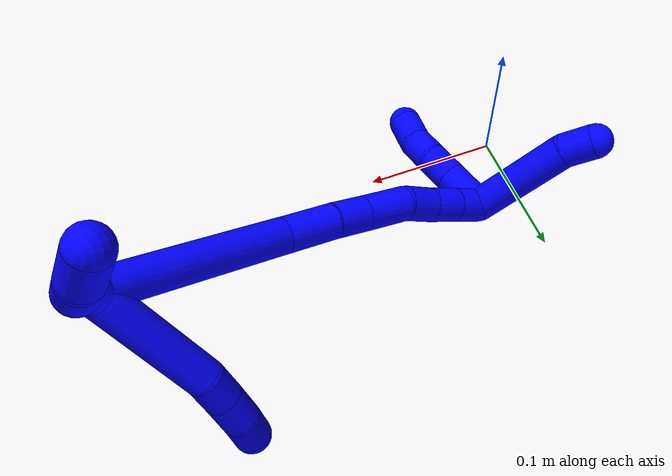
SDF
<sdf version="1.7">
 <world name="default">
  <model name="1">
   <static>0</static>
   <link name="1">
    <collision name="collision-cylinder-e_1_2_8">
     <pose>-0.017245 0.033324 -0.020356 -2.11915 -0.41586 0.719472</pose>
     <geometry><cylinder><radius>0.0125</radius><length>0.085376</length></cylinder></geometry>
     <surface>
      <friction><ode><mu>1.16</mu><mu2>1.16</mu2><slip1>0</slip1><slip2>0</slip2></ode></friction>
      <contact><ode><kp>1e+06</kp><kd>1</kd><max_vel>0</max_vel><min_depth>0.001</min_depth></ode></contact>
     </surface>
    </collision>
    <visual name="visual-cylinder-e_1_2_8">
     <pose>-0.017245 0.033324 -0.020356 -2.11915 -0.41586 0.719472</pose>
     <geometry><cylinder><radius>0.0125</radius><length>0.085376</length></cylinder></geometry>
     <material><ambient>0 0 1 1</ambient></material>
    </visual>
    <collision name="collision-cylinder-e_2_8_9">
     <pose>-0.035873 0.075308 -0.045839 -2.10537 -0.136602 0.23886</pose>
     <geometry><cylinder><radius>0.0125</radius><length>0.020316</length></cylinder></geometry>
     <surface>
      <friction><ode><mu>1.16</mu><mu2>1.16</mu2><slip1>0</slip1><slip2>0</slip2></ode></friction>
      <contact><ode><kp>1e+06</kp><kd>1</kd><max_vel>0</max_vel><min_depth>0.001</min_depth></ode></contact>
     </surface>
    </collision>
    <visual name="visual-cylinder-e_2_8_9">
     <pose>-0.035873 0.075308 -0.045839 -2.10537 -0.136602 0.23886</pose>
     <geometry><cylinder><radius>0.0125</radius><length>0.020316</length></cylinder></geometry>
     <material><ambient>0 0 1 1</ambient></material>
    </visual>
    <collision name="collision-cylinder-e_3_9_10">
     <pose>-0.038606 0.093469 -0.056375 -2.08832 -0.122862 0.2108</pose>
     <geometry><cylinder><radius>0.0125</radius><length>0.022033</length></cylinder></geometry>
     <surface>
      <friction><ode><mu>1.16</mu><mu2>1.16</mu2><slip1>0</slip1><slip2>0</slip2></ode></friction>
      <contact><ode><kp>1e+06</kp><kd>1</kd><max_vel>0</max_vel><min_depth>0.001</min_depth></ode></contact>
     </surface>
    </collision>
    <visual name="visual-cylinder-e_3_9_10">
     <pose>-0.038606 0.093469 -0.056375 -2.08832 -0.122862 0.2108</pose>
     <geometry><cylinder><radius>0.0125</radius><length>0.022033</length></cylinder></geometry>
     <material><ambient>0 0 1 1</ambient></material>
    </visual>
    <collision name="collision-cylinder-e_4_10_6">
     <pose>-0.038757 0.111981 -0.06822 -2.19106 0.10789 -0.209091</pose>
     <geometry><cylinder><radius>0.0125</radius><length>0.022275</length></cylinder></geometry>
     <surface>
      <friction><ode><mu>1.16</mu><mu2>1.16</mu2><slip1>0</slip1><slip2>0</slip2></ode></friction>
      <contact><ode><kp>1e+06</kp><kd>1</kd><max_vel>0</max_vel><min_depth>0.001</min_depth></ode></contact>
     </surface>
    </collision>
    <visual name="visual-cylinder-e_4_10_6">
     <pose>-0.038757 0.111981 -0.06822 -2.19106 0.10789 -0.209091</pose>
     <geometry><cylinder><radius>0.0125</radius><length>0.022275</length></cylinder></geometry>
     <material><ambient>0 0 1 1</ambient></material>
    </visual>
    <collision name="collision-cylinder-e_1_2_11">
     <pose>-0.014983 -0.007313 0.019715 0.355203 -0.619077 -0.114684</pose>
     <geometry><cylinder><radius>0.0125</radius><length>0.05164</length></cylinder></geometry>
     <surface>
      <friction><ode><mu>1.16</mu><mu2>1.16</mu2><slip1>0</slip1><slip2>0</slip2></ode></friction>
      <contact><ode><kp>1e+06</kp><kd>1</kd><max_vel>0</max_vel><min_depth>0.001</min_depth></ode></contact>
     </surface>
    </collision>
    <visual name="visual-cylinder-e_1_2_11">
     <pose>-0.014983 -0.007313 0.019715 0.355203 -0.619077 -0.114684</pose>
     <geometry><cylinder><radius>0.0125</radius><length>0.05164</length></cylinder></geometry>
     <material><ambient>0 0 1 1</ambient></material>
    </visual>
    <collision name="collision-cylinder-e_2_11_12">
     <pose>-0.037272 -0.019494 0.044844 0.7323 -0.787196 -0.31581</pose>
     <geometry><cylinder><radius>0.0125</radius><length>0.020628</length></cylinder></geometry>
     <surface>
      <friction><ode><mu>1.16</mu><mu2>1.16</mu2><slip1>0</slip1><slip2>0</slip2></ode></friction>
      <contact><ode><kp>1e+06</kp><kd>1</kd><max_vel>0</max_vel><min_depth>0.001</min_depth></ode></contact>
     </surface>
    </collision>
    <visual name="visual-cylinder-e_2_11_12">
     <pose>-0.037272 -0.019494 0.044844 0.7323 -0.787196 -0.31581</pose>
     <geometry><cylinder><radius>0.0125</radius><length>0.020628</length></cylinder></geometry>
     <material><ambient>0 0 1 1</ambient></material>
    </visual>
    <collision name="collision-cylinder-e_3_12_5">
     <pose>-0.053696 -0.03376 0.054817 1.11917 -0.717626 -0.461471</pose>
     <geometry><cylinder><radius>0.0125</radius><length>0.027732</length></cylinder></geometry>
     <surface>
      <friction><ode><mu>1.16</mu><mu2>1.16</mu2><slip1>0</slip1><slip2>0</slip2></ode></friction>
      <contact><ode><kp>1e+06</kp><kd>1</kd><max_vel>0</max_vel><min_depth>0.001</min_depth></ode></contact>
     </surface>
    </collision>
    <visual name="visual-cylinder-e_3_12_5">
     <pose>-0.053696 -0.03376 0.054817 1.11917 -0.717626 -0.461471</pose>
     <geometry><cylinder><radius>0.0125</radius><length>0.027732</length></cylinder></geometry>
     <material><ambient>0 0 1 1</ambient></material>
    </visual>
    <collision name="collision-cylinder-e_1_2_13">
     <pose>-0.025769 0.000775 -0.060831 -3.12886 -0.400662 3.07888</pose>
     <geometry><cylinder><radius>0.0125</radius><length>0.132138</length></cylinder></geometry>
     <surface>
      <friction><ode><mu>1.16</mu><mu2>1.16</mu2><slip1>0</slip1><slip2>0</slip2></ode></friction>
      <contact><ode><kp>1e+06</kp><kd>1</kd><max_vel>0</max_vel><min_depth>0.001</min_depth></ode></contact>
     </surface>
    </collision>
    <visual name="visual-cylinder-e_1_2_13">
     <pose>-0.025769 0.000775 -0.060831 -3.12886 -0.400662 3.07888</pose>
     <geometry><cylinder><radius>0.0125</radius><length>0.132138</length></cylinder></geometry>
     <material><ambient>0 0 1 1</ambient></material>
    </visual>
    <collision name="collision-cylinder-e_2_13_14">
     <pose>-0.061818 0.000838 -0.137911 3.09779 -0.563694 -2.99059</pose>
     <geometry><cylinder><radius>0.0125</radius><length>0.038481</length></cylinder></geometry>
     <surface>
      <friction><ode><mu>1.16</mu><mu2>1.16</mu2><slip1>0</slip1><slip2>0</slip2></ode></friction>
      <contact><ode><kp>1e+06</kp><kd>1</kd><max_vel>0</max_vel><min_depth>0.001</min_depth></ode></contact>
     </surface>
    </collision>
    <visual name="visual-cylinder-e_2_13_14">
     <pose>-0.061818 0.000838 -0.137911 3.09779 -0.563694 -2.99059</pose>
     <geometry><cylinder><radius>0.0125</radius><length>0.038481</length></cylinder></geometry>
     <material><ambient>0 0 1 1</ambient></material>
    </visual>
    <collision name="collision-cylinder-e_3_14_15">
     <pose>-0.078502 0.000376 -0.165269 -3.11904 -0.522801 3.05735</pose>
     <geometry><cylinder><radius>0.0125</radius><length>0.025652</length></cylinder></geometry>
     <surface>
      <friction><ode><mu>1.16</mu><mu2>1.16</mu2><slip1>0</slip1><slip2>0</slip2></ode></friction>
      <contact><ode><kp>1e+06</kp><kd>1</kd><max_vel>0</max_vel><min_depth>0.001</min_depth></ode></contact>
     </surface>
    </collision>
    <visual name="visual-cylinder-e_3_14_15">
     <pose>-0.078502 0.000376 -0.165269 -3.11904 -0.522801 3.05735</pose>
     <geometry><cylinder><radius>0.0125</radius><length>0.025652</length></cylinder></geometry>
     <material><ambient>0 0 1 1</ambient></material>
    </visual>
    <collision name="collision-cylinder-e_4_15_16">
     <pose>-0.09473 0.000362 -0.190338 3.12262 -0.613145 -3.08168</pose>
     <geometry><cylinder><radius>0.0125</radius><length>0.034141</length></cylinder></geometry>
     <surface>
      <friction><ode><mu>1.16</mu><mu2>1.16</mu2><slip1>0</slip1><slip2>0</slip2></ode></friction>
      <contact><ode><kp>1e+06</kp><kd>1</kd><max_vel>0</max_vel><min_depth>0.001</min_depth></ode></contact>
     </surface>
    </collision>
    <visual name="visual-cylinder-e_4_15_16">
     <pose>-0.09473 0.000362 -0.190338 3.12262 -0.613145 -3.08168</pose>
     <geometry><cylinder><radius>0.0125</radius><length>0.034141</length></cylinder></geometry>
     <material><ambient>0 0 1 1</ambient></material>
    </visual>
    <collision name="collision-cylinder-e_5_16_17">
     <pose>-0.110126 0.003205 -0.214651 -2.84995 -0.475982 2.05284</pose>
     <geometry><cylinder><radius>0.0125</radius><length>0.024326</length></cylinder></geometry>
     <surface>
      <friction><ode><mu>1.16</mu><mu2>1.16</mu2><slip1>0</slip1><slip2>0</slip2></ode></friction>
      <contact><ode><kp>1e+06</kp><kd>1</kd><max_vel>0</max_vel><min_depth>0.001</min_depth></ode></contact>
     </surface>
    </collision>
    <visual name="visual-cylinder-e_5_16_17">
     <pose>-0.110126 0.003205 -0.214651 -2.84995 -0.475982 2.05284</pose>
     <geometry><cylinder><radius>0.0125</radius><length>0.024326</length></cylinder></geometry>
     <material><ambient>0 0 1 1</ambient></material>
    </visual>
    <collision name="collision-cylinder-e_6_17_18">
     <pose>-0.121935 0.008476 -0.233899 -2.90307 -0.598089 2.40015</pose>
     <geometry><cylinder><radius>0.0125</radius><length>0.022151</length></cylinder></geometry>
     <surface>
      <friction><ode><mu>1.16</mu><mu2>1.16</mu2><slip1>0</slip1><slip2>0</slip2></ode></friction>
      <contact><ode><kp>1e+06</kp><kd>1</kd><max_vel>0</max_vel><min_depth>0.001</min_depth></ode></contact>
     </surface>
    </collision>
    <visual name="visual-cylinder-e_6_17_18">
     <pose>-0.121935 0.008476 -0.233899 -2.90307 -0.598089 2.40015</pose>
     <geometry><cylinder><radius>0.0125</radius><length>0.022151</length></cylinder></geometry>
     <material><ambient>0 0 1 1</ambient></material>
    </visual>
    <collision name="collision-cylinder-e_7_18_1">
     <pose>-0.1346 0.01297 -0.252108 -2.8964 -0.589943 2.37107</pose>
     <geometry><cylinder><radius>0.0125</radius><length>0.023111</length></cylinder></geometry>
     <surface>
      <friction><ode><mu>1.16</mu><mu2>1.16</mu2><slip1>0</slip1><slip2>0</slip2></ode></friction>
      <contact><ode><kp>1e+06</kp><kd>1</kd><max_vel>0</max_vel><min_depth>0.001</min_depth></ode></contact>
     </surface>
    </collision>
    <visual name="visual-cylinder-e_7_18_1">
     <pose>-0.1346 0.01297 -0.252108 -2.8964 -0.589943 2.37107</pose>
     <geometry><cylinder><radius>0.0125</radius><length>0.023111</length></cylinder></geometry>
     <material><ambient>0 0 1 1</ambient></material>
    </visual>
    <collision name="collision-cylinder-e_1_1_19">
     <pose>-0.173837 -0.004318 -0.260958 1.5471 -1.03174 -1.01152</pose>
     <geometry><cylinder><radius>0.0125</radius><length>0.076459</length></cylinder></geometry>
     <surface>
      <friction><ode><mu>1.16</mu><mu2>1.16</mu2><slip1>0</slip1><slip2>0</slip2></ode></friction>
      <contact><ode><kp>1e+06</kp><kd>1</kd><max_vel>0</max_vel><min_depth>0.001</min_depth></ode></contact>
     </surface>
    </collision>
    <visual name="visual-cylinder-e_1_1_19">
     <pose>-0.173837 -0.004318 -0.260958 1.5471 -1.03174 -1.01152</pose>
     <geometry><cylinder><radius>0.0125</radius><length>0.076459</length></cylinder></geometry>
     <material><ambient>0 0 1 1</ambient></material>
    </visual>
    <collision name="collision-cylinder-e_2_19_4">
     <pose>-0.217991 -0.027015 -0.259897 1.37954 -1.30114 -1.12133</pose>
     <geometry><cylinder><radius>0.0125</radius><length>0.023541</length></cylinder></geometry>
     <surface>
      <friction><ode><mu>1.16</mu><mu2>1.16</mu2><slip1>0</slip1><slip2>0</slip2></ode></friction>
      <contact><ode><kp>1e+06</kp><kd>1</kd><max_vel>0</max_vel><min_depth>0.001</min_depth></ode></contact>
     </surface>
    </collision>
    <visual name="visual-cylinder-e_2_19_4">
     <pose>-0.217991 -0.027015 -0.259897 1.37954 -1.30114 -1.12133</pose>
     <geometry><cylinder><radius>0.0125</radius><length>0.023541</length></cylinder></geometry>
     <material><ambient>0 0 1 1</ambient></material>
    </visual>
    <collision name="collision-cylinder-e_1_1_20">
     <pose>-0.128881 0.005573 -0.267222 2.10837 0.820419 1.30675</pose>
     <geometry><cylinder><radius>0.0125</radius><length>0.033216</length></cylinder></geometry>
     <surface>
      <friction><ode><mu>1.16</mu><mu2>1.16</mu2><slip1>0</slip1><slip2>0</slip2></ode></friction>
      <contact><ode><kp>1e+06</kp><kd>1</kd><max_vel>0</max_vel><min_depth>0.001</min_depth></ode></contact>
     </surface>
    </collision>
    <visual name="visual-cylinder-e_1_1_20">
     <pose>-0.128881 0.005573 -0.267222 2.10837 0.820419 1.30675</pose>
     <geometry><cylinder><radius>0.0125</radius><length>0.033216</length></cylinder></geometry>
     <material><ambient>0 0 1 1</ambient></material>
    </visual>
    <collision name="collision-cylinder-e_2_20_21">
     <pose>-0.108095 -0.011581 -0.276168 1.97156 0.819726 1.16107</pose>
     <geometry><cylinder><radius>0.0125</radius><length>0.023638</length></cylinder></geometry>
     <surface>
      <friction><ode><mu>1.16</mu><mu2>1.16</mu2><slip1>0</slip1><slip2>0</slip2></ode></friction>
      <contact><ode><kp>1e+06</kp><kd>1</kd><max_vel>0</max_vel><min_depth>0.001</min_depth></ode></contact>
     </surface>
    </collision>
    <visual name="visual-cylinder-e_2_20_21">
     <pose>-0.108095 -0.011581 -0.276168 1.97156 0.819726 1.16107</pose>
     <geometry><cylinder><radius>0.0125</radius><length>0.023638</length></cylinder></geometry>
     <material><ambient>0 0 1 1</ambient></material>
    </visual>
    <collision name="collision-cylinder-e_3_21_22">
     <pose>-0.092044 -0.024631 -0.283413 2.20071 0.816893 1.41023</pose>
     <geometry><cylinder><radius>0.0125</radius><length>0.020333</length></cylinder></geometry>
     <surface>
      <friction><ode><mu>1.16</mu><mu2>1.16</mu2><slip1>0</slip1><slip2>0</slip2></ode></friction>
      <contact><ode><kp>1e+06</kp><kd>1</kd><max_vel>0</max_vel><min_depth>0.001</min_depth></ode></contact>
     </surface>
    </collision>
    <visual name="visual-cylinder-e_3_21_22">
     <pose>-0.092044 -0.024631 -0.283413 2.20071 0.816893 1.41023</pose>
     <geometry><cylinder><radius>0.0125</radius><length>0.020333</length></cylinder></geometry>
     <material><ambient>0 0 1 1</ambient></material>
    </visual>
    <collision name="collision-cylinder-e_4_22_3">
     <pose>-0.078396 -0.037454 -0.293789 2.28778 0.578415 1.15854</pose>
     <geometry><cylinder><radius>0.0125</radius><length>0.022814</length></cylinder></geometry>
     <surface>
      <friction><ode><mu>1.16</mu><mu2>1.16</mu2><slip1>0</slip1><slip2>0</slip2></ode></friction>
      <contact><ode><kp>1e+06</kp><kd>1</kd><max_vel>0</max_vel><min_depth>0.001</min_depth></ode></contact>
     </surface>
    </collision>
    <visual name="visual-cylinder-e_4_22_3">
     <pose>-0.078396 -0.037454 -0.293789 2.28778 0.578415 1.15854</pose>
     <geometry><cylinder><radius>0.0125</radius><length>0.022814</length></cylinder></geometry>
     <material><ambient>0 0 1 1</ambient></material>
    </visual>
    <collision name="collision-sphere-3">
     <pose>-0.07216 -0.044654 -0.300065 0 -0 0</pose>
     <geometry><sphere><radius>0.0125</radius></sphere></geometry>
     <surface>
      <friction><ode><mu>1.16</mu><mu2>1.16</mu2><slip1>0</slip1><slip2>0</slip2></ode></friction>
      <contact><ode><kp>1e+06</kp><kd>1</kd><max_vel>0</max_vel><min_depth>0.001</min_depth></ode></contact>
     </surface>
    </collision>
    <visual name="visual-sphere-3">
     <pose>-0.07216 -0.044654 -0.300065 0 -0 0</pose>
     <geometry><sphere><radius>0.0125</radius></sphere></geometry>
     <material><ambient>0 0 1 1</ambient></material>
    </visual>
    <collision name="collision-sphere-22">
     <pose>-0.084633 -0.030254 -0.287513 0 -0 0</pose>
     <geometry><sphere><radius>0.0125</radius></sphere></geometry>
     <surface>
      <friction><ode><mu>1.16</mu><mu2>1.16</mu2><slip1>0</slip1><slip2>0</slip2></ode></friction>
      <contact><ode><kp>1e+06</kp><kd>1</kd><max_vel>0</max_vel><min_depth>0.001</min_depth></ode></contact>
     </surface>
    </collision>
    <visual name="visual-sphere-22">
     <pose>-0.084633 -0.030254 -0.287513 0 -0 0</pose>
     <geometry><sphere><radius>0.0125</radius></sphere></geometry>
     <material><ambient>0 0 1 1</ambient></material>
    </visual>
    <collision name="collision-sphere-21">
     <pose>-0.099456 -0.019008 -0.279314 0 -0 0</pose>
     <geometry><sphere><radius>0.0125</radius></sphere></geometry>
     <surface>
      <friction><ode><mu>1.16</mu><mu2>1.16</mu2><slip1>0</slip1><slip2>0</slip2></ode></friction>
      <contact><ode><kp>1e+06</kp><kd>1</kd><max_vel>0</max_vel><min_depth>0.001</min_depth></ode></contact>
     </surface>
    </collision>
    <visual name="visual-sphere-21">
     <pose>-0.099456 -0.019008 -0.279314 0 -0 0</pose>
     <geometry><sphere><radius>0.0125</radius></sphere></geometry>
     <material><ambient>0 0 1 1</ambient></material>
    </visual>
    <collision name="collision-sphere-20">
     <pose>-0.116734 -0.004155 -0.273021 0 -0 0</pose>
     <geometry><sphere><radius>0.0125</radius></sphere></geometry>
     <surface>
      <friction><ode><mu>1.16</mu><mu2>1.16</mu2><slip1>0</slip1><slip2>0</slip2></ode></friction>
      <contact><ode><kp>1e+06</kp><kd>1</kd><max_vel>0</max_vel><min_depth>0.001</min_depth></ode></contact>
     </surface>
    </collision>
    <visual name="visual-sphere-20">
     <pose>-0.116734 -0.004155 -0.273021 0 -0 0</pose>
     <geometry><sphere><radius>0.0125</radius></sphere></geometry>
     <material><ambient>0 0 1 1</ambient></material>
    </visual>
    <collision name="collision-sphere-4">
     <pose>-0.229336 -0.030094 -0.259301 0 -0 0</pose>
     <geometry><sphere><radius>0.0125</radius></sphere></geometry>
     <surface>
      <friction><ode><mu>1.16</mu><mu2>1.16</mu2><slip1>0</slip1><slip2>0</slip2></ode></friction>
      <contact><ode><kp>1e+06</kp><kd>1</kd><max_vel>0</max_vel><min_depth>0.001</min_depth></ode></contact>
     </surface>
    </collision>
    <visual name="visual-sphere-4">
     <pose>-0.229336 -0.030094 -0.259301 0 -0 0</pose>
     <geometry><sphere><radius>0.0125</radius></sphere></geometry>
     <material><ambient>0 0 1 1</ambient></material>
    </visual>
    <collision name="collision-sphere-11">
     <pose>-0.029966 -0.014626 0.039431 0 -0 0</pose>
     <geometry><sphere><radius>0.0125</radius></sphere></geometry>
     <surface>
      <friction><ode><mu>1.16</mu><mu2>1.16</mu2><slip1>0</slip1><slip2>0</slip2></ode></friction>
      <contact><ode><kp>1e+06</kp><kd>1</kd><max_vel>0</max_vel><min_depth>0.001</min_depth></ode></contact>
     </surface>
    </collision>
    <visual name="visual-sphere-11">
     <pose>-0.029966 -0.014626 0.039431 0 -0 0</pose>
     <geometry><sphere><radius>0.0125</radius></sphere></geometry>
     <material><ambient>0 0 1 1</ambient></material>
    </visual>
    <collision name="collision-sphere-6">
     <pose>-0.037558 0.120991 -0.074656 0 -0 0</pose>
     <geometry><sphere><radius>0.0125</radius></sphere></geometry>
     <surface>
      <friction><ode><mu>1.16</mu><mu2>1.16</mu2><slip1>0</slip1><slip2>0</slip2></ode></friction>
      <contact><ode><kp>1e+06</kp><kd>1</kd><max_vel>0</max_vel><min_depth>0.001</min_depth></ode></contact>
     </surface>
    </collision>
    <visual name="visual-sphere-6">
     <pose>-0.037558 0.120991 -0.074656 0 -0 0</pose>
     <geometry><sphere><radius>0.0125</radius></sphere></geometry>
     <material><ambient>0 0 1 1</ambient></material>
    </visual>
    <collision name="collision-sphere-10">
     <pose>-0.039957 0.102971 -0.061784 0 -0 0</pose>
     <geometry><sphere><radius>0.0125</radius></sphere></geometry>
     <surface>
      <friction><ode><mu>1.16</mu><mu2>1.16</mu2><slip1>0</slip1><slip2>0</slip2></ode></friction>
      <contact><ode><kp>1e+06</kp><kd>1</kd><max_vel>0</max_vel><min_depth>0.001</min_depth></ode></contact>
     </surface>
    </collision>
    <visual name="visual-sphere-10">
     <pose>-0.039957 0.102971 -0.061784 0 -0 0</pose>
     <geometry><sphere><radius>0.0125</radius></sphere></geometry>
     <material><ambient>0 0 1 1</ambient></material>
    </visual>
    <collision name="collision-sphere-9">
     <pose>-0.037256 0.083967 -0.050966 0 -0 0</pose>
     <geometry><sphere><radius>0.0125</radius></sphere></geometry>
     <surface>
      <friction><ode><mu>1.16</mu><mu2>1.16</mu2><slip1>0</slip1><slip2>0</slip2></ode></friction>
      <contact><ode><kp>1e+06</kp><kd>1</kd><max_vel>0</max_vel><min_depth>0.001</min_depth></ode></contact>
     </surface>
    </collision>
    <visual name="visual-sphere-9">
     <pose>-0.037256 0.083967 -0.050966 0 -0 0</pose>
     <geometry><sphere><radius>0.0125</radius></sphere></geometry>
     <material><ambient>0 0 1 1</ambient></material>
    </visual>
    <collision name="collision-sphere-2">
     <geometry><sphere><radius>0.0125</radius></sphere></geometry>
     <surface>
      <friction><ode><mu>1.16</mu><mu2>1.16</mu2><slip1>0</slip1><slip2>0</slip2></ode></friction>
      <contact><ode><kp>1e+06</kp><kd>1</kd><max_vel>0</max_vel><min_depth>0.001</min_depth></ode></contact>
     </surface>
    </collision>
    <visual name="visual-sphere-2">
     <geometry><sphere><radius>0.0125</radius></sphere></geometry>
     <material><ambient>0 0 1 1</ambient></material>
    </visual>
    <collision name="collision-sphere-19">
     <pose>-0.206645 -0.023937 -0.260493 0 -0 0</pose>
     <geometry><sphere><radius>0.0125</radius></sphere></geometry>
     <surface>
      <friction><ode><mu>1.16</mu><mu2>1.16</mu2><slip1>0</slip1><slip2>0</slip2></ode></friction>
      <contact><ode><kp>1e+06</kp><kd>1</kd><max_vel>0</max_vel><min_depth>0.001</min_depth></ode></contact>
     </surface>
    </collision>
    <visual name="visual-sphere-19">
     <pose>-0.206645 -0.023937 -0.260493 0 -0 0</pose>
     <geometry><sphere><radius>0.0125</radius></sphere></geometry>
     <material><ambient>0 0 1 1</ambient></material>
    </visual>
    <collision name="collision-sphere-8">
     <pose>-0.03449 0.066648 -0.040712 0 -0 0</pose>
     <geometry><sphere><radius>0.0125</radius></sphere></geometry>
     <surface>
      <friction><ode><mu>1.16</mu><mu2>1.16</mu2><slip1>0</slip1><slip2>0</slip2></ode></friction>
      <contact><ode><kp>1e+06</kp><kd>1</kd><max_vel>0</max_vel><min_depth>0.001</min_depth></ode></contact>
     </surface>
    </collision>
    <visual name="visual-sphere-8">
     <pose>-0.03449 0.066648 -0.040712 0 -0 0</pose>
     <geometry><sphere><radius>0.0125</radius></sphere></geometry>
     <material><ambient>0 0 1 1</ambient></material>
    </visual>
    <collision name="collision-sphere-12">
     <pose>-0.044578 -0.024361 0.050258 0 -0 0</pose>
     <geometry><sphere><radius>0.0125</radius></sphere></geometry>
     <surface>
      <friction><ode><mu>1.16</mu><mu2>1.16</mu2><slip1>0</slip1><slip2>0</slip2></ode></friction>
      <contact><ode><kp>1e+06</kp><kd>1</kd><max_vel>0</max_vel><min_depth>0.001</min_depth></ode></contact>
     </surface>
    </collision>
    <visual name="visual-sphere-12">
     <pose>-0.044578 -0.024361 0.050258 0 -0 0</pose>
     <geometry><sphere><radius>0.0125</radius></sphere></geometry>
     <material><ambient>0 0 1 1</ambient></material>
    </visual>
    <collision name="collision-sphere-5">
     <pose>-0.062815 -0.043159 0.059376 0 -0 0</pose>
     <geometry><sphere><radius>0.0125</radius></sphere></geometry>
     <surface>
      <friction><ode><mu>1.16</mu><mu2>1.16</mu2><slip1>0</slip1><slip2>0</slip2></ode></friction>
      <contact><ode><kp>1e+06</kp><kd>1</kd><max_vel>0</max_vel><min_depth>0.001</min_depth></ode></contact>
     </surface>
    </collision>
    <visual name="visual-sphere-5">
     <pose>-0.062815 -0.043159 0.059376 0 -0 0</pose>
     <geometry><sphere><radius>0.0125</radius></sphere></geometry>
     <material><ambient>0 0 1 1</ambient></material>
    </visual>
    <collision name="collision-sphere-13">
     <pose>-0.051537 0.00155 -0.121663 0 -0 0</pose>
     <geometry><sphere><radius>0.0125</radius></sphere></geometry>
     <surface>
      <friction><ode><mu>1.16</mu><mu2>1.16</mu2><slip1>0</slip1><slip2>0</slip2></ode></friction>
      <contact><ode><kp>1e+06</kp><kd>1</kd><max_vel>0</max_vel><min_depth>0.001</min_depth></ode></contact>
     </surface>
    </collision>
    <visual name="visual-sphere-13">
     <pose>-0.051537 0.00155 -0.121663 0 -0 0</pose>
     <geometry><sphere><radius>0.0125</radius></sphere></geometry>
     <material><ambient>0 0 1 1</ambient></material>
    </visual>
    <collision name="collision-sphere-14">
     <pose>-0.072098 0.000126 -0.154159 0 -0 0</pose>
     <geometry><sphere><radius>0.0125</radius></sphere></geometry>
     <surface>
      <friction><ode><mu>1.16</mu><mu2>1.16</mu2><slip1>0</slip1><slip2>0</slip2></ode></friction>
      <contact><ode><kp>1e+06</kp><kd>1</kd><max_vel>0</max_vel><min_depth>0.001</min_depth></ode></contact>
     </surface>
    </collision>
    <visual name="visual-sphere-14">
     <pose>-0.072098 0.000126 -0.154159 0 -0 0</pose>
     <geometry><sphere><radius>0.0125</radius></sphere></geometry>
     <material><ambient>0 0 1 1</ambient></material>
    </visual>
    <collision name="collision-sphere-15">
     <pose>-0.084907 0.000627 -0.176379 0 -0 0</pose>
     <geometry><sphere><radius>0.0125</radius></sphere></geometry>
     <surface>
      <friction><ode><mu>1.16</mu><mu2>1.16</mu2><slip1>0</slip1><slip2>0</slip2></ode></friction>
      <contact><ode><kp>1e+06</kp><kd>1</kd><max_vel>0</max_vel><min_depth>0.001</min_depth></ode></contact>
     </surface>
    </collision>
    <visual name="visual-sphere-15">
     <pose>-0.084907 0.000627 -0.176379 0 -0 0</pose>
     <geometry><sphere><radius>0.0125</radius></sphere></geometry>
     <material><ambient>0 0 1 1</ambient></material>
    </visual>
    <collision name="collision-sphere-16">
     <pose>-0.104553 9.7e-05 -0.204296 0 -0 0</pose>
     <geometry><sphere><radius>0.0125</radius></sphere></geometry>
     <surface>
      <friction><ode><mu>1.16</mu><mu2>1.16</mu2><slip1>0</slip1><slip2>0</slip2></ode></friction>
      <contact><ode><kp>1e+06</kp><kd>1</kd><max_vel>0</max_vel><min_depth>0.001</min_depth></ode></contact>
     </surface>
    </collision>
    <visual name="visual-sphere-16">
     <pose>-0.104553 9.7e-05 -0.204296 0 -0 0</pose>
     <geometry><sphere><radius>0.0125</radius></sphere></geometry>
     <material><ambient>0 0 1 1</ambient></material>
    </visual>
    <collision name="collision-sphere-17">
     <pose>-0.115699 0.006314 -0.225005 0 -0 0</pose>
     <geometry><sphere><radius>0.0125</radius></sphere></geometry>
     <surface>
      <friction><ode><mu>1.16</mu><mu2>1.16</mu2><slip1>0</slip1><slip2>0</slip2></ode></friction>
      <contact><ode><kp>1e+06</kp><kd>1</kd><max_vel>0</max_vel><min_depth>0.001</min_depth></ode></contact>
     </surface>
    </collision>
    <visual name="visual-sphere-17">
     <pose>-0.115699 0.006314 -0.225005 0 -0 0</pose>
     <geometry><sphere><radius>0.0125</radius></sphere></geometry>
     <material><ambient>0 0 1 1</ambient></material>
    </visual>
    <collision name="collision-sphere-18">
     <pose>-0.128172 0.010639 -0.242792 0 -0 0</pose>
     <geometry><sphere><radius>0.0125</radius></sphere></geometry>
     <surface>
      <friction><ode><mu>1.16</mu><mu2>1.16</mu2><slip1>0</slip1><slip2>0</slip2></ode></friction>
      <contact><ode><kp>1e+06</kp><kd>1</kd><max_vel>0</max_vel><min_depth>0.001</min_depth></ode></contact>
     </surface>
    </collision>
    <visual name="visual-sphere-18">
     <pose>-0.128172 0.010639 -0.242792 0 -0 0</pose>
     <geometry><sphere><radius>0.0125</radius></sphere></geometry>
     <material><ambient>0 0 1 1</ambient></material>
    </visual>
    <collision name="collision-sphere-1">
     <pose>-0.141029 0.015301 -0.261423 0 -0 0</pose>
     <geometry><sphere><radius>0.0125</radius></sphere></geometry>
     <surface>
      <friction><ode><mu>1.16</mu><mu2>1.16</mu2><slip1>0</slip1><slip2>0</slip2></ode></friction>
      <contact><ode><kp>1e+06</kp><kd>1</kd><max_vel>0</max_vel><min_depth>0.001</min_depth></ode></contact>
     </surface>
    </collision>
    <visual name="visual-sphere-1">
     <pose>-0.141029 0.015301 -0.261423 0 -0 0</pose>
     <geometry><sphere><radius>0.0125</radius></sphere></geometry>
     <material><ambient>0 0 1 1</ambient></material>
    </visual>
    <inertial>
     <pose>-0.073851 0.007367 -0.128293 0 -0 0</pose>
     <mass>0.75</mass>
     <inertia>
      <ixx>-0.000112</ixx>
      <ixy>0</ixy>
      <ixz>0</ixz>
      <iyy>0.000288</iyy>
      <iyz>0</iyz>
      <izz>0.000109</izz>
     </inertia>
    </inertial>
   </link>
   <pose>0.306493 0.103711 0.131364 -0.892329 0.346844 -0.623385</pose>
  </model>
 </world>
</sdf>
